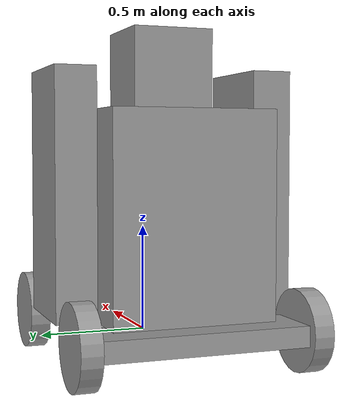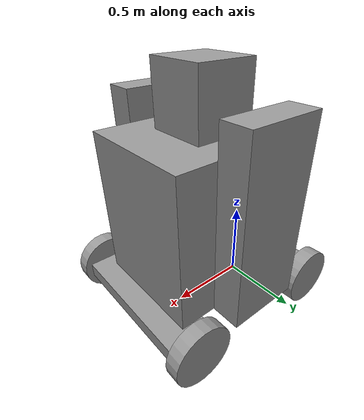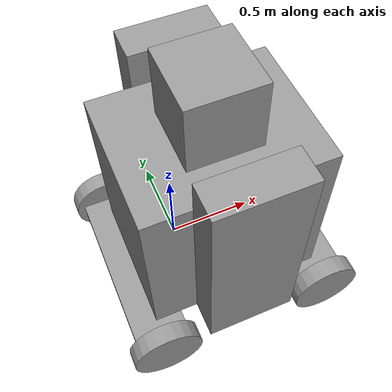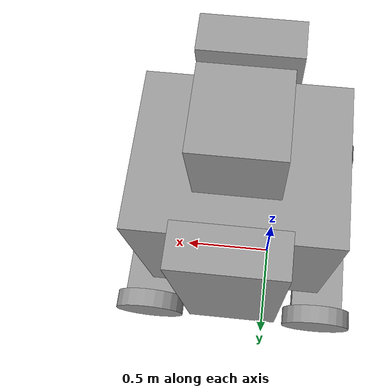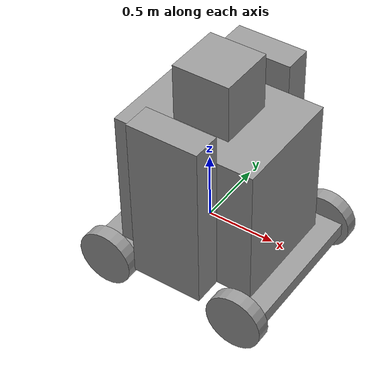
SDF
<?xml version='1.0'?>
<sdf version='1.6'>
  <model name='HumanoidRobot'>
    <link name='link_0'>
      <pose frame=''>-0.322222 -0.151781 0.006429 -0 -0 -0</pose>
      <inertial>
        <mass>1</mass>
        <inertia>
          <ixx>0.166667</ixx>
          <ixy>0</ixy>
          <ixz>0</ixz>
          <iyy>0.166667</iyy>
          <iyz>0</iyz>
          <izz>0.166667</izz>
        </inertia>
        <pose frame=''>0 0 0 0 -0 0</pose>
      </inertial>
      <self_collide>0</self_collide>
      <kinematic>0</kinematic>
      <visual name='visual'>
        <pose frame=''>0 0 0 0 -0 0</pose>
        <geometry>
          <box>
            <size>0.3 1 0.1</size>
          </box>
        </geometry>
        <material>
          <lighting>1</lighting>
          <script>
            <uri>file://media/materials/scripts/gazebo.material</uri>
            <name>Gazebo/Grey</name>
          </script>
          <shader type='pixel'>
            <normal_map>__default__</normal_map>
          </shader>
          <ambient>0.3 0.3 0.3 1</ambient>
          <diffuse>0.7 0.7 0.7 1</diffuse>
          <specular>0.01 0.01 0.01 1</specular>
          <emissive>0 0 0 1</emissive>
        </material>
        <transparency>0</transparency>
        <cast_shadows>1</cast_shadows>
      </visual>
      <collision name='collision'>
        <laser_retro>0</laser_retro>
        <max_contacts>10</max_contacts>
        <pose frame=''>0 0 0 0 -0 0</pose>
        <geometry>
          <box>
            <size>0.3 1 0.1</size>
          </box>
        </geometry>
        <surface>
          <friction>
            <ode>
              <mu>1</mu>
              <mu2>1</mu2>
              <fdir1>0 0 0</fdir1>
              <slip1>0</slip1>
              <slip2>0</slip2>
            </ode>
            <torsional>
              <coefficient>1</coefficient>
              <patch_radius>0</patch_radius>
              <surface_radius>0</surface_radius>
              <use_patch_radius>1</use_patch_radius>
              <ode>
                <slip>0</slip>
              </ode>
            </torsional>
          </friction>
          <bounce>
            <restitution_coefficient>0</restitution_coefficient>
            <threshold>1e+06</threshold>
          </bounce>
          <contact>
            <collide_without_contact>0</collide_without_contact>
            <collide_without_contact_bitmask>1</collide_without_contact_bitmask>
            <collide_bitmask>1</collide_bitmask>
            <ode>
              <soft_cfm>0</soft_cfm>
              <soft_erp>0.2</soft_erp>
              <kp>1e+13</kp>
              <kd>1</kd>
              <max_vel>0.01</max_vel>
              <min_depth>0</min_depth>
            </ode>
            <bullet>
              <split_impulse>1</split_impulse>
              <split_impulse_penetration_threshold>-0.01</split_impulse_penetration_threshold>
              <soft_cfm>0</soft_cfm>
              <soft_erp>0.2</soft_erp>
              <kp>1e+13</kp>
              <kd>1</kd>
            </bullet>
          </contact>
        </surface>
      </collision>
    </link>
    <link name='link_0_clone'>
      <pose frame=''>0.677778 -0.151781 0.006429 -0 -0 -0</pose>
      <inertial>
        <mass>1</mass>
        <inertia>
          <ixx>0.166667</ixx>
          <ixy>0</ixy>
          <ixz>0</ixz>
          <iyy>0.166667</iyy>
          <iyz>0</iyz>
          <izz>0.166667</izz>
        </inertia>
        <pose frame=''>0 0 0 0 -0 0</pose>
      </inertial>
      <self_collide>0</self_collide>
      <kinematic>0</kinematic>
      <visual name='visual'>
        <pose frame=''>0 0 0 0 -0 0</pose>
        <geometry>
          <box>
            <size>0.3 1 0.1</size>
          </box>
        </geometry>
        <material>
          <lighting>1</lighting>
          <script>
            <uri>file://media/materials/scripts/gazebo.material</uri>
            <name>Gazebo/Grey</name>
          </script>
          <shader type='pixel'>
            <normal_map>__default__</normal_map>
          </shader>
          <ambient>0.3 0.3 0.3 1</ambient>
          <diffuse>0.7 0.7 0.7 1</diffuse>
          <specular>0.01 0.01 0.01 1</specular>
          <emissive>0 0 0 1</emissive>
        </material>
        <transparency>0</transparency>
        <cast_shadows>1</cast_shadows>
      </visual>
      <collision name='collision'>
        <laser_retro>0</laser_retro>
        <max_contacts>10</max_contacts>
        <pose frame=''>0 0 0 0 -0 0</pose>
        <geometry>
          <box>
            <size>0.3 1 0.1</size>
          </box>
        </geometry>
        <surface>
          <friction>
            <ode>
              <mu>1</mu>
              <mu2>1</mu2>
              <fdir1>0 0 0</fdir1>
              <slip1>0</slip1>
              <slip2>0</slip2>
            </ode>
            <torsional>
              <coefficient>1</coefficient>
              <patch_radius>0</patch_radius>
              <surface_radius>0</surface_radius>
              <use_patch_radius>1</use_patch_radius>
              <ode>
                <slip>0</slip>
              </ode>
            </torsional>
          </friction>
          <bounce>
            <restitution_coefficient>0</restitution_coefficient>
            <threshold>1e+06</threshold>
          </bounce>
          <contact>
            <collide_without_contact>0</collide_without_contact>
            <collide_without_contact_bitmask>1</collide_without_contact_bitmask>
            <collide_bitmask>1</collide_bitmask>
            <ode>
              <soft_cfm>0</soft_cfm>
              <soft_erp>0.2</soft_erp>
              <kp>1e+13</kp>
              <kd>1</kd>
              <max_vel>0.01</max_vel>
              <min_depth>0</min_depth>
            </ode>
            <bullet>
              <split_impulse>1</split_impulse>
              <split_impulse_penetration_threshold>-0.01</split_impulse_penetration_threshold>
              <soft_cfm>0</soft_cfm>
              <soft_erp>0.2</soft_erp>
              <kp>1e+13</kp>
              <kd>1</kd>
            </bullet>
          </contact>
        </surface>
      </collision>
    </link>
    <link name='link_1'>
      <pose frame=''>-0.322222 -0.7018 0.006429 1.5707 -0 0</pose>
      <inertial>
        <mass>1</mass>
        <inertia>
          <ixx>0.145833</ixx>
          <ixy>0</ixy>
          <ixz>0</ixz>
          <iyy>0.145833</iyy>
          <iyz>0</iyz>
          <izz>0.125</izz>
        </inertia>
        <pose frame=''>0 0 0 0 -0 0</pose>
      </inertial>
      <self_collide>0</self_collide>
      <kinematic>0</kinematic>
      <visual name='visual'>
        <pose frame=''>0 0 0 0 -0 0</pose>
        <geometry>
          <cylinder>
            <radius>0.2</radius>
            <length>0.1</length>
          </cylinder>
        </geometry>
        <material>
          <lighting>1</lighting>
          <script>
            <uri>file://media/materials/scripts/gazebo.material</uri>
            <name>Gazebo/Grey</name>
          </script>
          <shader type='pixel'>
            <normal_map>__default__</normal_map>
          </shader>
          <ambient>0.3 0.3 0.3 1</ambient>
          <diffuse>0.7 0.7 0.7 1</diffuse>
          <specular>0.01 0.01 0.01 1</specular>
          <emissive>0 0 0 1</emissive>
        </material>
        <transparency>0</transparency>
        <cast_shadows>1</cast_shadows>
      </visual>
      <collision name='collision'>
        <laser_retro>0</laser_retro>
        <max_contacts>10</max_contacts>
        <pose frame=''>0 0 0 0 -0 0</pose>
        <geometry>
          <cylinder>
            <radius>0.2</radius>
            <length>0.1</length>
          </cylinder>
        </geometry>
        <surface>
          <friction>
            <ode>
              <mu>1</mu>
              <mu2>1</mu2>
              <fdir1>0 0 0</fdir1>
              <slip1>0</slip1>
              <slip2>0</slip2>
            </ode>
            <torsional>
              <coefficient>1</coefficient>
              <patch_radius>0</patch_radius>
              <surface_radius>0</surface_radius>
              <use_patch_radius>1</use_patch_radius>
              <ode>
                <slip>0</slip>
              </ode>
            </torsional>
          </friction>
          <bounce>
            <restitution_coefficient>0</restitution_coefficient>
            <threshold>1e+06</threshold>
          </bounce>
          <contact>
            <collide_without_contact>0</collide_without_contact>
            <collide_without_contact_bitmask>1</collide_without_contact_bitmask>
            <collide_bitmask>1</collide_bitmask>
            <ode>
              <soft_cfm>0</soft_cfm>
              <soft_erp>0.2</soft_erp>
              <kp>1e+13</kp>
              <kd>1</kd>
              <max_vel>0.01</max_vel>
              <min_depth>0</min_depth>
            </ode>
            <bullet>
              <split_impulse>1</split_impulse>
              <split_impulse_penetration_threshold>-0.01</split_impulse_penetration_threshold>
              <soft_cfm>0</soft_cfm>
              <soft_erp>0.2</soft_erp>
              <kp>1e+13</kp>
              <kd>1</kd>
            </bullet>
          </contact>
        </surface>
      </collision>
    </link>
    <link name='link_1_clone'>
      <pose frame=''>-0.322222 0.398238 0.006429 1.5707 -0 0</pose>
      <inertial>
        <mass>1</mass>
        <inertia>
          <ixx>0.145833</ixx>
          <ixy>0</ixy>
          <ixz>0</ixz>
          <iyy>0.145833</iyy>
          <iyz>0</iyz>
          <izz>0.125</izz>
        </inertia>
        <pose frame=''>0 0 0 0 -0 0</pose>
      </inertial>
      <self_collide>0</self_collide>
      <kinematic>0</kinematic>
      <visual name='visual'>
        <pose frame=''>0 0 0 0 -0 0</pose>
        <geometry>
          <cylinder>
            <radius>0.2</radius>
            <length>0.1</length>
          </cylinder>
        </geometry>
        <material>
          <lighting>1</lighting>
          <script>
            <uri>file://media/materials/scripts/gazebo.material</uri>
            <name>Gazebo/Grey</name>
          </script>
          <shader type='pixel'>
            <normal_map>__default__</normal_map>
          </shader>
          <ambient>0.3 0.3 0.3 1</ambient>
          <diffuse>0.7 0.7 0.7 1</diffuse>
          <specular>0.01 0.01 0.01 1</specular>
          <emissive>0 0 0 1</emissive>
        </material>
        <transparency>0</transparency>
        <cast_shadows>1</cast_shadows>
      </visual>
      <collision name='collision'>
        <laser_retro>0</laser_retro>
        <max_contacts>10</max_contacts>
        <pose frame=''>0 0 0 0 -0 0</pose>
        <geometry>
          <cylinder>
            <radius>0.2</radius>
            <length>0.1</length>
          </cylinder>
        </geometry>
        <surface>
          <friction>
            <ode>
              <mu>1</mu>
              <mu2>1</mu2>
              <fdir1>0 0 0</fdir1>
              <slip1>0</slip1>
              <slip2>0</slip2>
            </ode>
            <torsional>
              <coefficient>1</coefficient>
              <patch_radius>0</patch_radius>
              <surface_radius>0</surface_radius>
              <use_patch_radius>1</use_patch_radius>
              <ode>
                <slip>0</slip>
              </ode>
            </torsional>
          </friction>
          <bounce>
            <restitution_coefficient>0</restitution_coefficient>
            <threshold>1e+06</threshold>
          </bounce>
          <contact>
            <collide_without_contact>0</collide_without_contact>
            <collide_without_contact_bitmask>1</collide_without_contact_bitmask>
            <collide_bitmask>1</collide_bitmask>
            <ode>
              <soft_cfm>0</soft_cfm>
              <soft_erp>0.2</soft_erp>
              <kp>1e+13</kp>
              <kd>1</kd>
              <max_vel>0.01</max_vel>
              <min_depth>0</min_depth>
            </ode>
            <bullet>
              <split_impulse>1</split_impulse>
              <split_impulse_penetration_threshold>-0.01</split_impulse_penetration_threshold>
              <soft_cfm>0</soft_cfm>
              <soft_erp>0.2</soft_erp>
              <kp>1e+13</kp>
              <kd>1</kd>
            </bullet>
          </contact>
        </surface>
      </collision>
    </link>
    <link name='link_1_clone_0'>
      <pose frame=''>0.677778 0.398238 0.006429 1.5707 -0 0</pose>
      <inertial>
        <mass>1</mass>
        <inertia>
          <ixx>0.145833</ixx>
          <ixy>0</ixy>
          <ixz>0</ixz>
          <iyy>0.145833</iyy>
          <iyz>0</iyz>
          <izz>0.125</izz>
        </inertia>
        <pose frame=''>0 0 0 0 -0 0</pose>
      </inertial>
      <self_collide>0</self_collide>
      <kinematic>0</kinematic>
      <visual name='visual'>
        <pose frame=''>0 0 0 0 -0 0</pose>
        <geometry>
          <cylinder>
            <radius>0.2</radius>
            <length>0.1</length>
          </cylinder>
        </geometry>
        <material>
          <lighting>1</lighting>
          <script>
            <uri>file://media/materials/scripts/gazebo.material</uri>
            <name>Gazebo/Grey</name>
          </script>
          <shader type='pixel'>
            <normal_map>__default__</normal_map>
          </shader>
          <ambient>0.3 0.3 0.3 1</ambient>
          <diffuse>0.7 0.7 0.7 1</diffuse>
          <specular>0.01 0.01 0.01 1</specular>
          <emissive>0 0 0 1</emissive>
        </material>
        <transparency>0</transparency>
        <cast_shadows>1</cast_shadows>
      </visual>
      <collision name='collision'>
        <laser_retro>0</laser_retro>
        <max_contacts>10</max_contacts>
        <pose frame=''>0 0 0 0 -0 0</pose>
        <geometry>
          <cylinder>
            <radius>0.2</radius>
            <length>0.1</length>
          </cylinder>
        </geometry>
        <surface>
          <friction>
            <ode>
              <mu>1</mu>
              <mu2>1</mu2>
              <fdir1>0 0 0</fdir1>
              <slip1>0</slip1>
              <slip2>0</slip2>
            </ode>
            <torsional>
              <coefficient>1</coefficient>
              <patch_radius>0</patch_radius>
              <surface_radius>0</surface_radius>
              <use_patch_radius>1</use_patch_radius>
              <ode>
                <slip>0</slip>
              </ode>
            </torsional>
          </friction>
          <bounce>
            <restitution_coefficient>0</restitution_coefficient>
            <threshold>1e+06</threshold>
          </bounce>
          <contact>
            <collide_without_contact>0</collide_without_contact>
            <collide_without_contact_bitmask>1</collide_without_contact_bitmask>
            <collide_bitmask>1</collide_bitmask>
            <ode>
              <soft_cfm>0</soft_cfm>
              <soft_erp>0.2</soft_erp>
              <kp>1e+13</kp>
              <kd>1</kd>
              <max_vel>0.01</max_vel>
              <min_depth>0</min_depth>
            </ode>
            <bullet>
              <split_impulse>1</split_impulse>
              <split_impulse_penetration_threshold>-0.01</split_impulse_penetration_threshold>
              <soft_cfm>0</soft_cfm>
              <soft_erp>0.2</soft_erp>
              <kp>1e+13</kp>
              <kd>1</kd>
            </bullet>
          </contact>
        </surface>
      </collision>
    </link>
    <link name='link_1_clone_1'>
      <pose frame=''>0.677778 -0.7018 0.006429 1.5707 -0 0</pose>
      <inertial>
        <mass>1</mass>
        <inertia>
          <ixx>0.145833</ixx>
          <ixy>0</ixy>
          <ixz>0</ixz>
          <iyy>0.145833</iyy>
          <iyz>0</iyz>
          <izz>0.125</izz>
        </inertia>
        <pose frame=''>0 0 0 0 -0 0</pose>
      </inertial>
      <self_collide>0</self_collide>
      <kinematic>0</kinematic>
      <visual name='visual'>
        <pose frame=''>0 0 0 0 -0 0</pose>
        <geometry>
          <cylinder>
            <radius>0.2</radius>
            <length>0.1</length>
          </cylinder>
        </geometry>
        <material>
          <lighting>1</lighting>
          <script>
            <uri>file://media/materials/scripts/gazebo.material</uri>
            <name>Gazebo/Grey</name>
          </script>
          <shader type='pixel'>
            <normal_map>__default__</normal_map>
          </shader>
          <ambient>0.3 0.3 0.3 1</ambient>
          <diffuse>0.7 0.7 0.7 1</diffuse>
          <specular>0.01 0.01 0.01 1</specular>
          <emissive>0 0 0 1</emissive>
        </material>
        <transparency>0</transparency>
        <cast_shadows>1</cast_shadows>
      </visual>
      <collision name='collision'>
        <laser_retro>0</laser_retro>
        <max_contacts>10</max_contacts>
        <pose frame=''>0 0 0 0 -0 0</pose>
        <geometry>
          <cylinder>
            <radius>0.2</radius>
            <length>0.1</length>
          </cylinder>
        </geometry>
        <surface>
          <friction>
            <ode>
              <mu>1</mu>
              <mu2>1</mu2>
              <fdir1>0 0 0</fdir1>
              <slip1>0</slip1>
              <slip2>0</slip2>
            </ode>
            <torsional>
              <coefficient>1</coefficient>
              <patch_radius>0</patch_radius>
              <surface_radius>0</surface_radius>
              <use_patch_radius>1</use_patch_radius>
              <ode>
                <slip>0</slip>
              </ode>
            </torsional>
          </friction>
          <bounce>
            <restitution_coefficient>0</restitution_coefficient>
            <threshold>1e+06</threshold>
          </bounce>
          <contact>
            <collide_without_contact>0</collide_without_contact>
            <collide_without_contact_bitmask>1</collide_without_contact_bitmask>
            <collide_bitmask>1</collide_bitmask>
            <ode>
              <soft_cfm>0</soft_cfm>
              <soft_erp>0.2</soft_erp>
              <kp>1e+13</kp>
              <kd>1</kd>
              <max_vel>0.01</max_vel>
              <min_depth>0</min_depth>
            </ode>
            <bullet>
              <split_impulse>1</split_impulse>
              <split_impulse_penetration_threshold>-0.01</split_impulse_penetration_threshold>
              <soft_cfm>0</soft_cfm>
              <soft_erp>0.2</soft_erp>
              <kp>1e+13</kp>
              <kd>1</kd>
            </bullet>
          </contact>
        </surface>
      </collision>
    </link>
    <link name='link_2'>
      <pose frame=''>0.177778 -0.151781 0.556429 -0 -0 -0</pose>
      <inertial>
        <mass>1</mass>
        <inertia>
          <ixx>0.166667</ixx>
          <ixy>0</ixy>
          <ixz>0</ixz>
          <iyy>0.166667</iyy>
          <iyz>0</iyz>
          <izz>0.166667</izz>
        </inertia>
        <pose frame=''>0 0 0 0 -0 0</pose>
      </inertial>
      <self_collide>0</self_collide>
      <kinematic>0</kinematic>
      <visual name='visual'>
        <pose frame=''>0 0 0 0 -0 0</pose>
        <geometry>
          <box>
            <size>1 0.8 1</size>
          </box>
        </geometry>
        <material>
          <lighting>1</lighting>
          <script>
            <uri>file://media/materials/scripts/gazebo.material</uri>
            <name>Gazebo/Grey</name>
          </script>
          <shader type='pixel'>
            <normal_map>__default__</normal_map>
          </shader>
          <ambient>0.3 0.3 0.3 1</ambient>
          <diffuse>0.7 0.7 0.7 1</diffuse>
          <specular>0.01 0.01 0.01 1</specular>
          <emissive>0 0 0 1</emissive>
        </material>
        <transparency>0</transparency>
        <cast_shadows>1</cast_shadows>
      </visual>
      <collision name='collision'>
        <laser_retro>0</laser_retro>
        <max_contacts>10</max_contacts>
        <pose frame=''>0 0 0 0 -0 0</pose>
        <geometry>
          <box>
            <size>1 0.8 1</size>
          </box>
        </geometry>
        <surface>
          <friction>
            <ode>
              <mu>1</mu>
              <mu2>1</mu2>
              <fdir1>0 0 0</fdir1>
              <slip1>0</slip1>
              <slip2>0</slip2>
            </ode>
            <torsional>
              <coefficient>1</coefficient>
              <patch_radius>0</patch_radius>
              <surface_radius>0</surface_radius>
              <use_patch_radius>1</use_patch_radius>
              <ode>
                <slip>0</slip>
              </ode>
            </torsional>
          </friction>
          <bounce>
            <restitution_coefficient>0</restitution_coefficient>
            <threshold>1e+06</threshold>
          </bounce>
          <contact>
            <collide_without_contact>0</collide_without_contact>
            <collide_without_contact_bitmask>1</collide_without_contact_bitmask>
            <collide_bitmask>1</collide_bitmask>
            <ode>
              <soft_cfm>0</soft_cfm>
              <soft_erp>0.2</soft_erp>
              <kp>1e+13</kp>
              <kd>1</kd>
              <max_vel>0.01</max_vel>
              <min_depth>0</min_depth>
            </ode>
            <bullet>
              <split_impulse>1</split_impulse>
              <split_impulse_penetration_threshold>-0.01</split_impulse_penetration_threshold>
              <soft_cfm>0</soft_cfm>
              <soft_erp>0.2</soft_erp>
              <kp>1e+13</kp>
              <kd>1</kd>
            </bullet>
          </contact>
        </surface>
      </collision>
    </link>
    <link name='link_3'>
      <pose frame=''>0.177778 0.348219 0.656429 -0 -0 -0</pose>
      <inertial>
        <mass>1</mass>
        <inertia>
          <ixx>0.166667</ixx>
          <ixy>0</ixy>
          <ixz>0</ixz>
          <iyy>0.166667</iyy>
          <iyz>0</iyz>
          <izz>0.166667</izz>
        </inertia>
        <pose frame=''>0 0 0 0 -0 0</pose>
      </inertial>
      <self_collide>0</self_collide>
      <kinematic>0</kinematic>
      <visual name='visual'>
        <pose frame=''>0 0 0 0 -0 0</pose>
        <geometry>
          <box>
            <size>0.5 0.2 1.2</size>
          </box>
        </geometry>
        <material>
          <lighting>1</lighting>
          <script>
            <uri>file://media/materials/scripts/gazebo.material</uri>
            <name>Gazebo/Grey</name>
          </script>
          <shader type='pixel'>
            <normal_map>__default__</normal_map>
          </shader>
          <ambient>0.3 0.3 0.3 1</ambient>
          <diffuse>0.7 0.7 0.7 1</diffuse>
          <specular>0.01 0.01 0.01 1</specular>
          <emissive>0 0 0 1</emissive>
        </material>
        <transparency>0</transparency>
        <cast_shadows>1</cast_shadows>
      </visual>
      <collision name='collision'>
        <laser_retro>0</laser_retro>
        <max_contacts>10</max_contacts>
        <pose frame=''>0 0 0 0 -0 0</pose>
        <geometry>
          <box>
            <size>0.5 0.2 1.2</size>
          </box>
        </geometry>
        <surface>
          <friction>
            <ode>
              <mu>1</mu>
              <mu2>1</mu2>
              <fdir1>0 0 0</fdir1>
              <slip1>0</slip1>
              <slip2>0</slip2>
            </ode>
            <torsional>
              <coefficient>1</coefficient>
              <patch_radius>0</patch_radius>
              <surface_radius>0</surface_radius>
              <use_patch_radius>1</use_patch_radius>
              <ode>
                <slip>0</slip>
              </ode>
            </torsional>
          </friction>
          <bounce>
            <restitution_coefficient>0</restitution_coefficient>
            <threshold>1e+06</threshold>
          </bounce>
          <contact>
            <collide_without_contact>0</collide_without_contact>
            <collide_without_contact_bitmask>1</collide_without_contact_bitmask>
            <collide_bitmask>1</collide_bitmask>
            <ode>
              <soft_cfm>0</soft_cfm>
              <soft_erp>0.2</soft_erp>
              <kp>1e+13</kp>
              <kd>1</kd>
              <max_vel>0.01</max_vel>
              <min_depth>0</min_depth>
            </ode>
            <bullet>
              <split_impulse>1</split_impulse>
              <split_impulse_penetration_threshold>-0.01</split_impulse_penetration_threshold>
              <soft_cfm>0</soft_cfm>
              <soft_erp>0.2</soft_erp>
              <kp>1e+13</kp>
              <kd>1</kd>
            </bullet>
          </contact>
        </surface>
      </collision>
    </link>
    <link name='link_3_clone'>
      <pose frame=''>0.177778 -0.651781 0.65643 -0 -0 -0</pose>
      <inertial>
        <mass>1</mass>
        <inertia>
          <ixx>0.166667</ixx>
          <ixy>0</ixy>
          <ixz>0</ixz>
          <iyy>0.166667</iyy>
          <iyz>0</iyz>
          <izz>0.166667</izz>
        </inertia>
        <pose frame=''>0 0 0 0 -0 0</pose>
      </inertial>
      <self_collide>0</self_collide>
      <kinematic>0</kinematic>
      <visual name='visual'>
        <pose frame=''>0 0 0 0 -0 0</pose>
        <geometry>
          <box>
            <size>0.5 0.2 1.2</size>
          </box>
        </geometry>
        <material>
          <lighting>1</lighting>
          <script>
            <uri>file://media/materials/scripts/gazebo.material</uri>
            <name>Gazebo/Grey</name>
          </script>
          <shader type='pixel'>
            <normal_map>__default__</normal_map>
          </shader>
          <ambient>0.3 0.3 0.3 1</ambient>
          <diffuse>0.7 0.7 0.7 1</diffuse>
          <specular>0.01 0.01 0.01 1</specular>
          <emissive>0 0 0 1</emissive>
        </material>
        <transparency>0</transparency>
        <cast_shadows>1</cast_shadows>
      </visual>
      <collision name='collision'>
        <laser_retro>0</laser_retro>
        <max_contacts>10</max_contacts>
        <pose frame=''>0 0 0 0 -0 0</pose>
        <geometry>
          <box>
            <size>0.5 0.2 1.2</size>
          </box>
        </geometry>
        <surface>
          <friction>
            <ode>
              <mu>1</mu>
              <mu2>1</mu2>
              <fdir1>0 0 0</fdir1>
              <slip1>0</slip1>
              <slip2>0</slip2>
            </ode>
            <torsional>
              <coefficient>1</coefficient>
              <patch_radius>0</patch_radius>
              <surface_radius>0</surface_radius>
              <use_patch_radius>1</use_patch_radius>
              <ode>
                <slip>0</slip>
              </ode>
            </torsional>
          </friction>
          <bounce>
            <restitution_coefficient>0</restitution_coefficient>
            <threshold>1e+06</threshold>
          </bounce>
          <contact>
            <collide_without_contact>0</collide_without_contact>
            <collide_without_contact_bitmask>1</collide_without_contact_bitmask>
            <collide_bitmask>1</collide_bitmask>
            <ode>
              <soft_cfm>0</soft_cfm>
              <soft_erp>0.2</soft_erp>
              <kp>1e+13</kp>
              <kd>1</kd>
              <max_vel>0.01</max_vel>
              <min_depth>0</min_depth>
            </ode>
            <bullet>
              <split_impulse>1</split_impulse>
              <split_impulse_penetration_threshold>-0.01</split_impulse_penetration_threshold>
              <soft_cfm>0</soft_cfm>
              <soft_erp>0.2</soft_erp>
              <kp>1e+13</kp>
              <kd>1</kd>
            </bullet>
          </contact>
        </surface>
      </collision>
    </link>
    <link name='link_4'>
      <pose frame=''>0.177778 -0.151781 1.25643 -0 -0 -0</pose>
      <inertial>
        <mass>1</mass>
        <inertia>
          <ixx>0.166667</ixx>
          <ixy>0</ixy>
          <ixz>0</ixz>
          <iyy>0.166667</iyy>
          <iyz>0</iyz>
          <izz>0.166667</izz>
        </inertia>
        <pose frame=''>0 0 0 0 -0 0</pose>
      </inertial>
      <self_collide>0</self_collide>
      <kinematic>0</kinematic>
      <visual name='visual'>
        <pose frame=''>0 0 0 0 -0 0</pose>
        <geometry>
          <box>
            <size>0.4 0.4 0.4</size>
          </box>
        </geometry>
        <material>
          <lighting>1</lighting>
          <script>
            <uri>file://media/materials/scripts/gazebo.material</uri>
            <name>Gazebo/Grey</name>
          </script>
          <shader type='pixel'>
            <normal_map>__default__</normal_map>
          </shader>
          <ambient>0.3 0.3 0.3 1</ambient>
          <diffuse>0.7 0.7 0.7 1</diffuse>
          <specular>0.01 0.01 0.01 1</specular>
          <emissive>0 0 0 1</emissive>
        </material>
        <transparency>0</transparency>
        <cast_shadows>1</cast_shadows>
      </visual>
      <collision name='collision'>
        <laser_retro>0</laser_retro>
        <max_contacts>10</max_contacts>
        <pose frame=''>0 0 0 0 -0 0</pose>
        <geometry>
          <box>
            <size>0.4 0.4 0.4</size>
          </box>
        </geometry>
        <surface>
          <friction>
            <ode>
              <mu>1</mu>
              <mu2>1</mu2>
              <fdir1>0 0 0</fdir1>
              <slip1>0</slip1>
              <slip2>0</slip2>
            </ode>
            <torsional>
              <coefficient>1</coefficient>
              <patch_radius>0</patch_radius>
              <surface_radius>0</surface_radius>
              <use_patch_radius>1</use_patch_radius>
              <ode>
                <slip>0</slip>
              </ode>
            </torsional>
          </friction>
          <bounce>
            <restitution_coefficient>0</restitution_coefficient>
            <threshold>1e+06</threshold>
          </bounce>
          <contact>
            <collide_without_contact>0</collide_without_contact>
            <collide_without_contact_bitmask>1</collide_without_contact_bitmask>
            <collide_bitmask>1</collide_bitmask>
            <ode>
              <soft_cfm>0</soft_cfm>
              <soft_erp>0.2</soft_erp>
              <kp>1e+13</kp>
              <kd>1</kd>
              <max_vel>0.01</max_vel>
              <min_depth>0</min_depth>
            </ode>
            <bullet>
              <split_impulse>1</split_impulse>
              <split_impulse_penetration_threshold>-0.01</split_impulse_penetration_threshold>
              <soft_cfm>0</soft_cfm>
              <soft_erp>0.2</soft_erp>
              <kp>1e+13</kp>
              <kd>1</kd>
            </bullet>
          </contact>
        </surface>
      </collision>
    </link>
    <joint name='link_0_JOINT_2' type='revolute'>
      <parent>link_0</parent>
      <child>link_1</child>
      <pose frame=''>0 0 0 0 -0 0</pose>
      <axis>
        <xyz>0 0 1</xyz>
        <use_parent_model_frame>0</use_parent_model_frame>
        <limit>
          <lower>-1.79769e+308</lower>
          <upper>1.79769e+308</upper>
          <effort>-1</effort>
          <velocity>-1</velocity>
        </limit>
        <dynamics>
          <spring_reference>0</spring_reference>
          <spring_stiffness>0</spring_stiffness>
          <damping>0</damping>
          <friction>0</friction>
        </dynamics>
      </axis>
      <physics>
        <ode>
          <limit>
            <cfm>0</cfm>
            <erp>0.2</erp>
          </limit>
          <suspension>
            <cfm>0</cfm>
            <erp>0.2</erp>
          </suspension>
        </ode>
      </physics>
    </joint>
    <joint name='link_0_JOINT_3' type='revolute'>
      <parent>link_0</parent>
      <child>link_1_clone</child>
      <pose frame=''>0 0 0 0 -0 0</pose>
      <axis>
        <xyz>1 0 0</xyz>
        <use_parent_model_frame>0</use_parent_model_frame>
        <limit>
          <lower>-1.79769e+308</lower>
          <upper>1.79769e+308</upper>
          <effort>-1</effort>
          <velocity>-1</velocity>
        </limit>
        <dynamics>
          <spring_reference>0</spring_reference>
          <spring_stiffness>0</spring_stiffness>
          <damping>0</damping>
          <friction>0</friction>
        </dynamics>
      </axis>
      <physics>
        <ode>
          <limit>
            <cfm>0</cfm>
            <erp>0.2</erp>
          </limit>
          <suspension>
            <cfm>0</cfm>
            <erp>0.2</erp>
          </suspension>
        </ode>
      </physics>
    </joint>
    <joint name='link_0_clone_JOINT_4' type='revolute'>
      <parent>link_0_clone</parent>
      <child>link_1_clone_0</child>
      <pose frame=''>0 0 0 0 -0 0</pose>
      <axis>
        <xyz>1 0 0</xyz>
        <use_parent_model_frame>0</use_parent_model_frame>
        <limit>
          <lower>-1.79769e+308</lower>
          <upper>1.79769e+308</upper>
          <effort>-1</effort>
          <velocity>-1</velocity>
        </limit>
        <dynamics>
          <spring_reference>0</spring_reference>
          <spring_stiffness>0</spring_stiffness>
          <damping>0</damping>
          <friction>0</friction>
        </dynamics>
      </axis>
      <physics>
        <ode>
          <limit>
            <cfm>0</cfm>
            <erp>0.2</erp>
          </limit>
          <suspension>
            <cfm>0</cfm>
            <erp>0.2</erp>
          </suspension>
        </ode>
      </physics>
    </joint>
    <joint name='link_0_clone_JOINT_5' type='revolute'>
      <parent>link_0_clone</parent>
      <child>link_1_clone_1</child>
      <pose frame=''>0 0 0 0 -0 0</pose>
      <axis>
        <xyz>1 0 0</xyz>
        <use_parent_model_frame>0</use_parent_model_frame>
        <limit>
          <lower>-1.79769e+308</lower>
          <upper>1.79769e+308</upper>
          <effort>-1</effort>
          <velocity>-1</velocity>
        </limit>
        <dynamics>
          <spring_reference>0</spring_reference>
          <spring_stiffness>0</spring_stiffness>
          <damping>0</damping>
          <friction>0</friction>
        </dynamics>
      </axis>
      <physics>
        <ode>
          <limit>
            <cfm>0</cfm>
            <erp>0.2</erp>
          </limit>
          <suspension>
            <cfm>0</cfm>
            <erp>0.2</erp>
          </suspension>
        </ode>
      </physics>
    </joint>
    <joint name='link_2_JOINT_10' type='revolute'>
      <parent>link_2</parent>
      <child>link_4</child>
      <pose frame=''>0 0 0 0 -0 0</pose>
      <axis>
        <xyz>0 0 1</xyz>
        <use_parent_model_frame>0</use_parent_model_frame>
        <limit>
          <lower>-1.79769e+308</lower>
          <upper>1.79769e+308</upper>
          <effort>-1</effort>
          <velocity>-1</velocity>
        </limit>
        <dynamics>
          <spring_reference>0</spring_reference>
          <spring_stiffness>0</spring_stiffness>
          <damping>0</damping>
          <friction>0</friction>
        </dynamics>
      </axis>
      <physics>
        <ode>
          <limit>
            <cfm>0</cfm>
            <erp>0.2</erp>
          </limit>
          <suspension>
            <cfm>0</cfm>
            <erp>0.2</erp>
          </suspension>
        </ode>
      </physics>
    </joint>
    <joint name='link_2_JOINT_6' type='fixed'>
      <parent>link_2</parent>
      <child>link_0</child>
      <pose frame=''>0 0 0 0 -0 0</pose>
      <physics>
        <ode>
          <limit>
            <cfm>0</cfm>
            <erp>0.2</erp>
          </limit>
          <suspension>
            <cfm>0</cfm>
            <erp>0.2</erp>
          </suspension>
        </ode>
      </physics>
    </joint>
    <joint name='link_2_JOINT_7' type='fixed'>
      <parent>link_2</parent>
      <child>link_0_clone</child>
      <pose frame=''>0 0 0 0 -0 0</pose>
      <physics>
        <ode>
          <limit>
            <cfm>0</cfm>
            <erp>0.2</erp>
          </limit>
          <suspension>
            <cfm>0</cfm>
            <erp>0.2</erp>
          </suspension>
        </ode>
      </physics>
    </joint>
    <joint name='link_2_JOINT_8' type='fixed'>
      <parent>link_2</parent>
      <child>link_3</child>
      <pose frame=''>0 0 0 0 -0 0</pose>
      <physics>
        <ode>
          <limit>
            <cfm>0</cfm>
            <erp>0.2</erp>
          </limit>
          <suspension>
            <cfm>0</cfm>
            <erp>0.2</erp>
          </suspension>
        </ode>
      </physics>
    </joint>
    <joint name='link_2_JOINT_9' type='fixed'>
      <parent>link_2</parent>
      <child>link_3_clone</child>
      <pose frame=''>0 0 0 0 -0 0</pose>
      <physics>
        <ode>
          <limit>
            <cfm>0</cfm>
            <erp>0.2</erp>
          </limit>
          <suspension>
            <cfm>0</cfm>
            <erp>0.2</erp>
          </suspension>
        </ode>
      </physics>
    </joint>
    <static>0</static>
    <allow_auto_disable>1</allow_auto_disable>
  </model>
</sdf>
